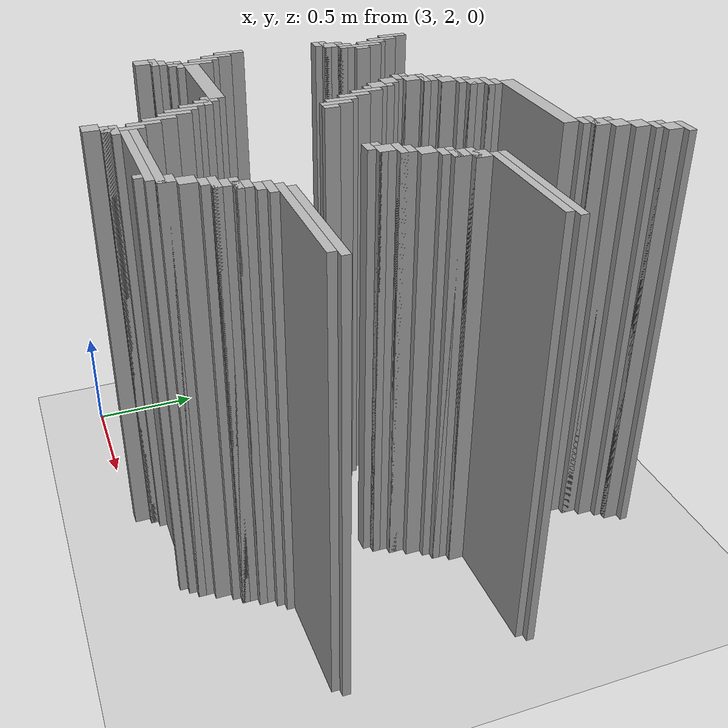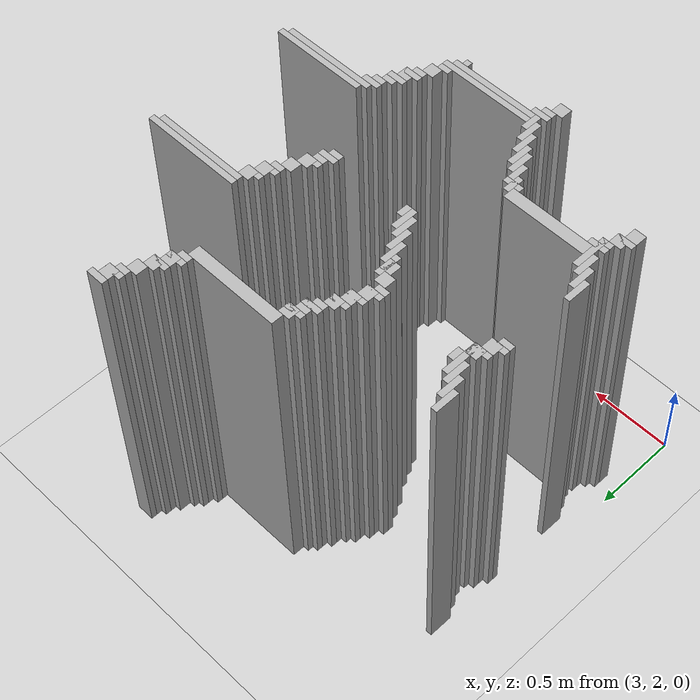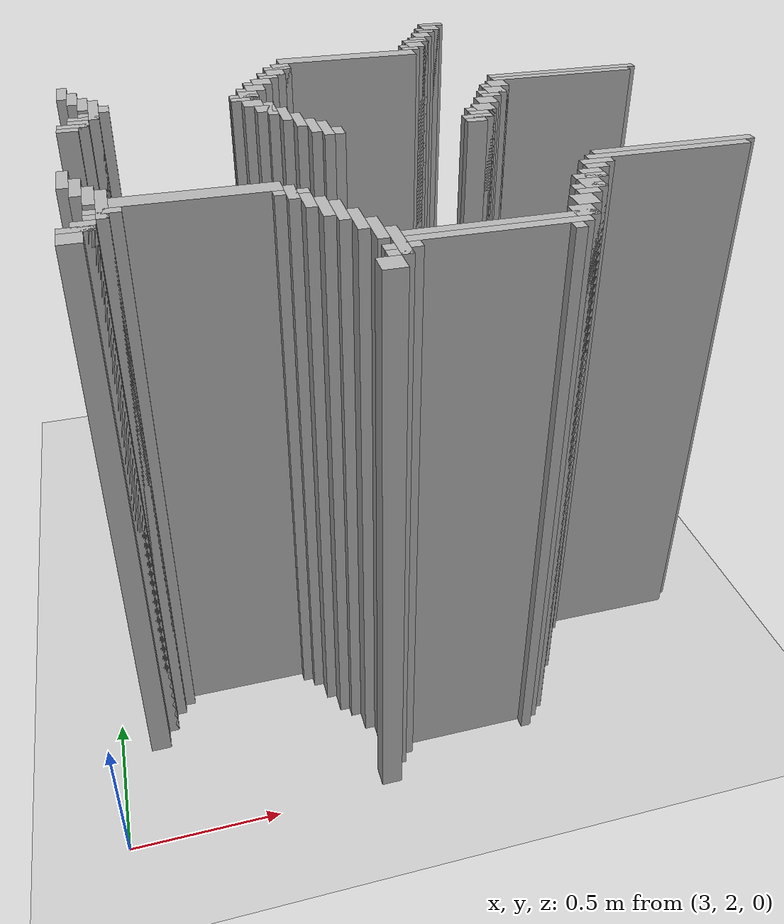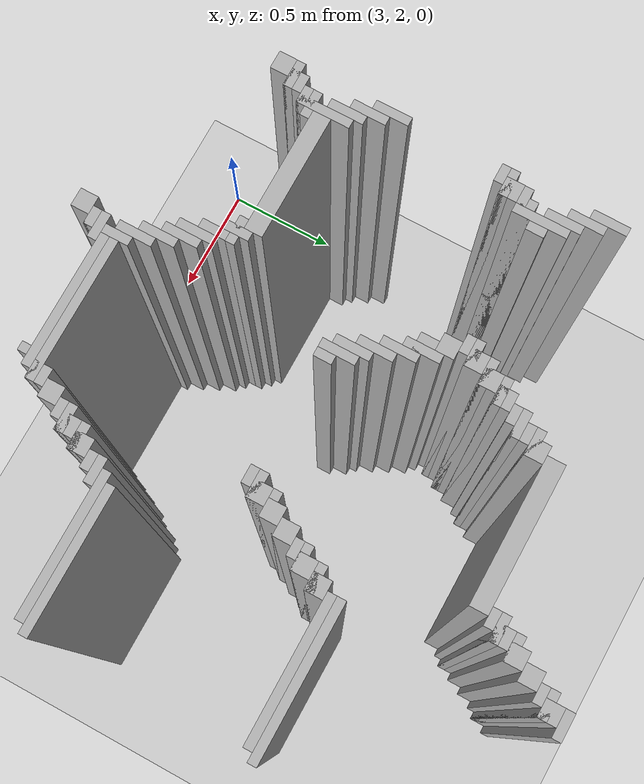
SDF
<sdf version="1.6">
 <world name="slam_world">
  <model name="ground_plane">
   <static>true</static>
   <link name="link">
    <collision name="collision">
     <geometry><plane><normal>0 0 1</normal><size>100 100</size></plane></geometry>
    </collision>
    <visual name="visual">
     <geometry><plane><normal>0 0 1</normal><size>100 100</size></plane></geometry>
     <material>
      <ambient>0.8 0.8 0.8 1</ambient>
      <diffuse>0.8 0.8 0.8 1</diffuse>
      <specular>0.8 0.8 0.8 1</specular>
     </material>
    </visual>
   </link>
  </model>
  <model name="wall_4302">
   <static>true</static>
   <pose>4.6809744779582365 4.263341067285383 1.0 0 0 0</pose>
   <link name="link">
    <collision name="collision">
     <geometry><box><size>0.10440835266821345 0.03480278422273782 2.0</size></box></geometry>
    </collision>
    <visual name="visual">
     <geometry><box><size>0.10440835266821345 0.03480278422273782 2.0</size></box></geometry>
     <material><ambient>0.5 0.5 0.5 1</ambient><diffuse>0.7 0.7 0.7 1</diffuse></material>
    </visual>
   </link>
  </model>
  <model name="wall_4316">
   <static>true</static>
   <pose>4.663573085846868 4.211136890951276 1.0 0 0 0</pose>
   <link name="link">
    <collision name="collision">
     <geometry><box><size>0.06960556844547564 0.06960556844547564 2.0</size></box></geometry>
    </collision>
    <visual name="visual">
     <geometry><box><size>0.06960556844547564 0.06960556844547564 2.0</size></box></geometry>
     <material><ambient>0.5 0.5 0.5 1</ambient><diffuse>0.7 0.7 0.7 1</diffuse></material>
    </visual>
   </link>
  </model>
  <model name="wall_4331">
   <static>true</static>
   <pose>4.646171693735498 4.193735498839907 1.0 0 0 0</pose>
   <link name="link">
    <collision name="collision">
     <geometry><box><size>0.10440835266821345 0.03480278422273782 2.0</size></box></geometry>
    </collision>
    <visual name="visual">
     <geometry><box><size>0.10440835266821345 0.03480278422273782 2.0</size></box></geometry>
     <material><ambient>0.5 0.5 0.5 1</ambient><diffuse>0.7 0.7 0.7 1</diffuse></material>
    </visual>
   </link>
  </model>
  <model name="wall_4344">
   <static>true</static>
   <pose>4.6287703016241295 4.158932714617169 1.0 0 0 0</pose>
   <link name="link">
    <collision name="collision">
     <geometry><box><size>0.06960556844547564 0.03480278422273782 2.0</size></box></geometry>
    </collision>
    <visual name="visual">
     <geometry><box><size>0.06960556844547564 0.03480278422273782 2.0</size></box></geometry>
     <material><ambient>0.5 0.5 0.5 1</ambient><diffuse>0.7 0.7 0.7 1</diffuse></material>
    </visual>
   </link>
  </model>
  <model name="wall_4355">
   <static>true</static>
   <pose>4.593967517401392 4.106728538283062 1.0 0 0 0</pose>
   <link name="link">
    <collision name="collision">
     <geometry><box><size>0.06960556844547564 0.06960556844547564 2.0</size></box></geometry>
    </collision>
    <visual name="visual">
     <geometry><box><size>0.06960556844547564 0.06960556844547564 2.0</size></box></geometry>
     <material><ambient>0.5 0.5 0.5 1</ambient><diffuse>0.7 0.7 0.7 1</diffuse></material>
    </visual>
   </link>
  </model>
  <model name="wall_4370">
   <static>true</static>
   <pose>4.559164733178654 4.037122969837587 1.0 0 0 0</pose>
   <link name="link">
    <collision name="collision">
     <geometry><box><size>0.06960556844547564 0.06960556844547564 2.0</size></box></geometry>
    </collision>
    <visual name="visual">
     <geometry><box><size>0.06960556844547564 0.06960556844547564 2.0</size></box></geometry>
     <material><ambient>0.5 0.5 0.5 1</ambient><diffuse>0.7 0.7 0.7 1</diffuse></material>
    </visual>
   </link>
  </model>
  <model name="wall_4385">
   <static>true</static>
   <pose>4.541763341067285 4.019721577726218 1.0 0 0 0</pose>
   <link name="link">
    <collision name="collision">
     <geometry><box><size>0.10440835266821345 0.03480278422273782 2.0</size></box></geometry>
    </collision>
    <visual name="visual">
     <geometry><box><size>0.10440835266821345 0.03480278422273782 2.0</size></box></geometry>
     <material><ambient>0.5 0.5 0.5 1</ambient><diffuse>0.7 0.7 0.7 1</diffuse></material>
    </visual>
   </link>
  </model>
  <model name="wall_4398">
   <static>true</static>
   <pose>4.524361948955916 3.967517401392111 1.0 0 0 0</pose>
   <link name="link">
    <collision name="collision">
     <geometry><box><size>0.06960556844547564 0.06960556844547564 2.0</size></box></geometry>
    </collision>
    <visual name="visual">
     <geometry><box><size>0.06960556844547564 0.06960556844547564 2.0</size></box></geometry>
     <material><ambient>0.5 0.5 0.5 1</ambient><diffuse>0.7 0.7 0.7 1</diffuse></material>
    </visual>
   </link>
  </model>
  <model name="wall_4408">
   <static>true</static>
   <pose>4.506960556844548 3.9501160092807424 1.0 0 0 0</pose>
   <link name="link">
    <collision name="collision">
     <geometry><box><size>0.10440835266821345 0.03480278422273782 2.0</size></box></geometry>
    </collision>
    <visual name="visual">
     <geometry><box><size>0.10440835266821345 0.03480278422273782 2.0</size></box></geometry>
     <material><ambient>0.5 0.5 0.5 1</ambient><diffuse>0.7 0.7 0.7 1</diffuse></material>
    </visual>
   </link>
  </model>
  <model name="wall_4421">
   <static>true</static>
   <pose>4.489559164733178 3.9153132250580045 1.0 0 0 0</pose>
   <link name="link">
    <collision name="collision">
     <geometry><box><size>0.06960556844547564 0.03480278422273782 2.0</size></box></geometry>
    </collision>
    <visual name="visual">
     <geometry><box><size>0.06960556844547564 0.03480278422273782 2.0</size></box></geometry>
     <material><ambient>0.5 0.5 0.5 1</ambient><diffuse>0.7 0.7 0.7 1</diffuse></material>
    </visual>
   </link>
  </model>
  <model name="wall_4432">
   <static>true</static>
   <pose>4.211136890951276 3.863109048723898 1.0 0 0 0</pose>
   <link name="link">
    <collision name="collision">
     <geometry><box><size>0.5568445475638051 0.06960556844547564 2.0</size></box></geometry>
    </collision>
    <visual name="visual">
     <geometry><box><size>0.5568445475638051 0.06960556844547564 2.0</size></box></geometry>
     <material><ambient>0.5 0.5 0.5 1</ambient><diffuse>0.7 0.7 0.7 1</diffuse></material>
    </visual>
   </link>
  </model>
  <model name="wall_4448">
   <static>true</static>
   <pose>3.932714617169373 3.793503480278422 1.0 0 0 0</pose>
   <link name="link">
    <collision name="collision">
     <geometry><box><size>0.06960556844547564 0.06960556844547564 2.0</size></box></geometry>
    </collision>
    <visual name="visual">
     <geometry><box><size>0.06960556844547564 0.06960556844547564 2.0</size></box></geometry>
     <material><ambient>0.5 0.5 0.5 1</ambient><diffuse>0.7 0.7 0.7 1</diffuse></material>
    </visual>
   </link>
  </model>
  <model name="wall_4465">
   <static>true</static>
   <pose>3.9153132250580045 3.776102088167053 1.0 0 0 0</pose>
   <link name="link">
    <collision name="collision">
     <geometry><box><size>0.10440835266821345 0.03480278422273782 2.0</size></box></geometry>
    </collision>
    <visual name="visual">
     <geometry><box><size>0.10440835266821345 0.03480278422273782 2.0</size></box></geometry>
     <material><ambient>0.5 0.5 0.5 1</ambient><diffuse>0.7 0.7 0.7 1</diffuse></material>
    </visual>
   </link>
  </model>
  <model name="wall_4482">
   <static>true</static>
   <pose>3.897911832946636 3.7238979118329465 1.0 0 0 0</pose>
   <link name="link">
    <collision name="collision">
     <geometry><box><size>0.06960556844547564 0.06960556844547564 2.0</size></box></geometry>
    </collision>
    <visual name="visual">
     <geometry><box><size>0.06960556844547564 0.06960556844547564 2.0</size></box></geometry>
     <material><ambient>0.5 0.5 0.5 1</ambient><diffuse>0.7 0.7 0.7 1</diffuse></material>
    </visual>
   </link>
  </model>
  <model name="wall_4498">
   <static>true</static>
   <pose>3.1148491879350346 3.6542923433874708 1.0 0 0 0</pose>
   <link name="link">
    <collision name="collision">
     <geometry><box><size>0.03480278422273782 0.13921113689095127 2.0</size></box></geometry>
    </collision>
    <visual name="visual">
     <geometry><box><size>0.03480278422273782 0.13921113689095127 2.0</size></box></geometry>
     <material><ambient>0.5 0.5 0.5 1</ambient><diffuse>0.7 0.7 0.7 1</diffuse></material>
    </visual>
   </link>
  </model>
  <model name="wall_4499">
   <static>true</static>
   <pose>3.8805104408352666 3.706496519721578 1.0 0 0 0</pose>
   <link name="link">
    <collision name="collision">
     <geometry><box><size>0.10440835266821345 0.03480278422273782 2.0</size></box></geometry>
    </collision>
    <visual name="visual">
     <geometry><box><size>0.10440835266821345 0.03480278422273782 2.0</size></box></geometry>
     <material><ambient>0.5 0.5 0.5 1</ambient><diffuse>0.7 0.7 0.7 1</diffuse></material>
    </visual>
   </link>
  </model>
  <model name="wall_4513">
   <static>true</static>
   <pose>3.863109048723898 3.67169373549884 1.0 0 0 0</pose>
   <link name="link">
    <collision name="collision">
     <geometry><box><size>0.06960556844547564 0.03480278422273782 2.0</size></box></geometry>
    </collision>
    <visual name="visual">
     <geometry><box><size>0.06960556844547564 0.03480278422273782 2.0</size></box></geometry>
     <material><ambient>0.5 0.5 0.5 1</ambient><diffuse>0.7 0.7 0.7 1</diffuse></material>
    </visual>
   </link>
  </model>
  <model name="wall_4522">
   <static>true</static>
   <pose>3.1496519721577725 3.584686774941995 1.0 0 0 0</pose>
   <link name="link">
    <collision name="collision">
     <geometry><box><size>0.03480278422273782 0.13921113689095127 2.0</size></box></geometry>
    </collision>
    <visual name="visual">
     <geometry><box><size>0.03480278422273782 0.13921113689095127 2.0</size></box></geometry>
     <material><ambient>0.5 0.5 0.5 1</ambient><diffuse>0.7 0.7 0.7 1</diffuse></material>
    </visual>
   </link>
  </model>
  <model name="wall_4523">
   <static>true</static>
   <pose>3.82830626450116 3.619489559164733 1.0 0 0 0</pose>
   <link name="link">
    <collision name="collision">
     <geometry><box><size>0.06960556844547564 0.06960556844547564 2.0</size></box></geometry>
    </collision>
    <visual name="visual">
     <geometry><box><size>0.06960556844547564 0.06960556844547564 2.0</size></box></geometry>
     <material><ambient>0.5 0.5 0.5 1</ambient><diffuse>0.7 0.7 0.7 1</diffuse></material>
    </visual>
   </link>
  </model>
  <model name="wall_4537">
   <static>true</static>
   <pose>3.810904872389791 3.602088167053364 1.0 0 0 0</pose>
   <link name="link">
    <collision name="collision">
     <geometry><box><size>0.10440835266821345 0.03480278422273782 2.0</size></box></geometry>
    </collision>
    <visual name="visual">
     <geometry><box><size>0.10440835266821345 0.03480278422273782 2.0</size></box></geometry>
     <material><ambient>0.5 0.5 0.5 1</ambient><diffuse>0.7 0.7 0.7 1</diffuse></material>
    </visual>
   </link>
  </model>
  <model name="wall_4546">
   <static>true</static>
   <pose>3.1844547563805103 3.51508120649652 1.0 0 0 0</pose>
   <link name="link">
    <collision name="collision">
     <geometry><box><size>0.03480278422273782 0.13921113689095127 2.0</size></box></geometry>
    </collision>
    <visual name="visual">
     <geometry><box><size>0.03480278422273782 0.13921113689095127 2.0</size></box></geometry>
     <material><ambient>0.5 0.5 0.5 1</ambient><diffuse>0.7 0.7 0.7 1</diffuse></material>
    </visual>
   </link>
  </model>
  <model name="wall_4547">
   <static>true</static>
   <pose>3.793503480278422 3.549883990719257 1.0 0 0 0</pose>
   <link name="link">
    <collision name="collision">
     <geometry><box><size>0.06960556844547564 0.06960556844547564 2.0</size></box></geometry>
    </collision>
    <visual name="visual">
     <geometry><box><size>0.06960556844547564 0.06960556844547564 2.0</size></box></geometry>
     <material><ambient>0.5 0.5 0.5 1</ambient><diffuse>0.7 0.7 0.7 1</diffuse></material>
    </visual>
   </link>
  </model>
  <model name="wall_4563">
   <static>true</static>
   <pose>3.219257540603248 3.445475638051044 1.0 0 0 0</pose>
   <link name="link">
    <collision name="collision">
     <geometry><box><size>0.03480278422273782 0.2088167053364269 2.0</size></box></geometry>
    </collision>
    <visual name="visual">
     <geometry><box><size>0.03480278422273782 0.2088167053364269 2.0</size></box></geometry>
     <material><ambient>0.5 0.5 0.5 1</ambient><diffuse>0.7 0.7 0.7 1</diffuse></material>
    </visual>
   </link>
  </model>
  <model name="wall_4564">
   <static>true</static>
   <pose>3.776102088167053 3.5324825986078885 1.0 0 0 0</pose>
   <link name="link">
    <collision name="collision">
     <geometry><box><size>0.10440835266821345 0.03480278422273782 2.0</size></box></geometry>
    </collision>
    <visual name="visual">
     <geometry><box><size>0.10440835266821345 0.03480278422273782 2.0</size></box></geometry>
     <material><ambient>0.5 0.5 0.5 1</ambient><diffuse>0.7 0.7 0.7 1</diffuse></material>
    </visual>
   </link>
  </model>
  <model name="wall_4578">
   <static>true</static>
   <pose>3.7587006960556844 3.480278422273782 1.0 0 0 0</pose>
   <link name="link">
    <collision name="collision">
     <geometry><box><size>0.06960556844547564 0.06960556844547564 2.0</size></box></geometry>
    </collision>
    <visual name="visual">
     <geometry><box><size>0.06960556844547564 0.06960556844547564 2.0</size></box></geometry>
     <material><ambient>0.5 0.5 0.5 1</ambient><diffuse>0.7 0.7 0.7 1</diffuse></material>
    </visual>
   </link>
  </model>
  <model name="wall_4587">
   <static>true</static>
   <pose>3.254060324825986 3.445475638051044 1.0 0 0 0</pose>
   <link name="link">
    <collision name="collision">
     <geometry><box><size>0.03480278422273782 0.06960556844547564 2.0</size></box></geometry>
    </collision>
    <visual name="visual">
     <geometry><box><size>0.03480278422273782 0.06960556844547564 2.0</size></box></geometry>
     <material><ambient>0.5 0.5 0.5 1</ambient><diffuse>0.7 0.7 0.7 1</diffuse></material>
    </visual>
   </link>
  </model>
  <model name="wall_4588">
   <static>true</static>
   <pose>3.741299303944315 3.4628770301624128 1.0 0 0 0</pose>
   <link name="link">
    <collision name="collision">
     <geometry><box><size>0.10440835266821345 0.03480278422273782 2.0</size></box></geometry>
    </collision>
    <visual name="visual">
     <geometry><box><size>0.10440835266821345 0.03480278422273782 2.0</size></box></geometry>
     <material><ambient>0.5 0.5 0.5 1</ambient><diffuse>0.7 0.7 0.7 1</diffuse></material>
    </visual>
   </link>
  </model>
  <model name="wall_4589">
   <static>true</static>
   <pose>4.959396751740139 3.4628770301624128 1.0 0 0 0</pose>
   <link name="link">
    <collision name="collision">
     <geometry><box><size>0.5916473317865429 0.03480278422273782 2.0</size></box></geometry>
    </collision>
    <visual name="visual">
     <geometry><box><size>0.5916473317865429 0.03480278422273782 2.0</size></box></geometry>
     <material><ambient>0.5 0.5 0.5 1</ambient><diffuse>0.7 0.7 0.7 1</diffuse></material>
    </visual>
   </link>
  </model>
  <model name="wall_4601">
   <static>true</static>
   <pose>3.7238979118329465 3.428074245939675 1.0 0 0 0</pose>
   <link name="link">
    <collision name="collision">
     <geometry><box><size>0.06960556844547564 0.03480278422273782 2.0</size></box></geometry>
    </collision>
    <visual name="visual">
     <geometry><box><size>0.06960556844547564 0.03480278422273782 2.0</size></box></geometry>
     <material><ambient>0.5 0.5 0.5 1</ambient><diffuse>0.7 0.7 0.7 1</diffuse></material>
    </visual>
   </link>
  </model>
  <model name="wall_4602">
   <static>true</static>
   <pose>4.94199535962877 3.428074245939675 1.0 0 0 0</pose>
   <link name="link">
    <collision name="collision">
     <geometry><box><size>0.5568445475638051 0.03480278422273782 2.0</size></box></geometry>
    </collision>
    <visual name="visual">
     <geometry><box><size>0.5568445475638051 0.03480278422273782 2.0</size></box></geometry>
     <material><ambient>0.5 0.5 0.5 1</ambient><diffuse>0.7 0.7 0.7 1</diffuse></material>
    </visual>
   </link>
  </model>
  <model name="wall_4609">
   <static>true</static>
   <pose>3.201856148491879 3.3758700696055683 1.0 0 0 0</pose>
   <link name="link">
    <collision name="collision">
     <geometry><box><size>0.06960556844547564 0.06960556844547564 2.0</size></box></geometry>
    </collision>
    <visual name="visual">
     <geometry><box><size>0.06960556844547564 0.06960556844547564 2.0</size></box></geometry>
     <material><ambient>0.5 0.5 0.5 1</ambient><diffuse>0.7 0.7 0.7 1</diffuse></material>
    </visual>
   </link>
  </model>
  <model name="wall_4610">
   <static>true</static>
   <pose>3.7587006960556844 3.3758700696055683 1.0 0 0 0</pose>
   <link name="link">
    <collision name="collision">
     <geometry><box><size>0.06960556844547564 0.06960556844547564 2.0</size></box></geometry>
    </collision>
    <visual name="visual">
     <geometry><box><size>0.06960556844547564 0.06960556844547564 2.0</size></box></geometry>
     <material><ambient>0.5 0.5 0.5 1</ambient><diffuse>0.7 0.7 0.7 1</diffuse></material>
    </visual>
   </link>
  </model>
  <model name="wall_4611">
   <static>true</static>
   <pose>4.663573085846868 3.3758700696055683 1.0 0 0 0</pose>
   <link name="link">
    <collision name="collision">
     <geometry><box><size>0.06960556844547564 0.06960556844547564 2.0</size></box></geometry>
    </collision>
    <visual name="visual">
     <geometry><box><size>0.06960556844547564 0.06960556844547564 2.0</size></box></geometry>
     <material><ambient>0.5 0.5 0.5 1</ambient><diffuse>0.7 0.7 0.7 1</diffuse></material>
    </visual>
   </link>
  </model>
  <model name="wall_4622">
   <static>true</static>
   <pose>3.1844547563805103 3.358468677494199 1.0 0 0 0</pose>
   <link name="link">
    <collision name="collision">
     <geometry><box><size>0.10440835266821345 0.03480278422273782 2.0</size></box></geometry>
    </collision>
    <visual name="visual">
     <geometry><box><size>0.10440835266821345 0.03480278422273782 2.0</size></box></geometry>
     <material><ambient>0.5 0.5 0.5 1</ambient><diffuse>0.7 0.7 0.7 1</diffuse></material>
    </visual>
   </link>
  </model>
  <model name="wall_4623">
   <static>true</static>
   <pose>3.810904872389791 3.3062645011600926 1.0 0 0 0</pose>
   <link name="link">
    <collision name="collision">
     <geometry><box><size>0.03480278422273782 0.13921113689095127 2.0</size></box></geometry>
    </collision>
    <visual name="visual">
     <geometry><box><size>0.03480278422273782 0.13921113689095127 2.0</size></box></geometry>
     <material><ambient>0.5 0.5 0.5 1</ambient><diffuse>0.7 0.7 0.7 1</diffuse></material>
    </visual>
   </link>
  </model>
  <model name="wall_4624">
   <static>true</static>
   <pose>4.646171693735498 3.358468677494199 1.0 0 0 0</pose>
   <link name="link">
    <collision name="collision">
     <geometry><box><size>0.10440835266821345 0.03480278422273782 2.0</size></box></geometry>
    </collision>
    <visual name="visual">
     <geometry><box><size>0.10440835266821345 0.03480278422273782 2.0</size></box></geometry>
     <material><ambient>0.5 0.5 0.5 1</ambient><diffuse>0.7 0.7 0.7 1</diffuse></material>
    </visual>
   </link>
  </model>
  <model name="wall_4635">
   <static>true</static>
   <pose>3.167053364269141 3.3062645011600926 1.0 0 0 0</pose>
   <link name="link">
    <collision name="collision">
     <geometry><box><size>0.06960556844547564 0.06960556844547564 2.0</size></box></geometry>
    </collision>
    <visual name="visual">
     <geometry><box><size>0.06960556844547564 0.06960556844547564 2.0</size></box></geometry>
     <material><ambient>0.5 0.5 0.5 1</ambient><diffuse>0.7 0.7 0.7 1</diffuse></material>
    </visual>
   </link>
  </model>
  <model name="wall_4636">
   <static>true</static>
   <pose>3.793503480278422 3.3062645011600926 1.0 0 0 0</pose>
   <link name="link">
    <collision name="collision">
     <geometry><box><size>0.06960556844547564 0.06960556844547564 2.0</size></box></geometry>
    </collision>
    <visual name="visual">
     <geometry><box><size>0.06960556844547564 0.06960556844547564 2.0</size></box></geometry>
     <material><ambient>0.5 0.5 0.5 1</ambient><diffuse>0.7 0.7 0.7 1</diffuse></material>
    </visual>
   </link>
  </model>
  <model name="wall_4637">
   <static>true</static>
   <pose>4.6287703016241295 3.3062645011600926 1.0 0 0 0</pose>
   <link name="link">
    <collision name="collision">
     <geometry><box><size>0.06960556844547564 0.06960556844547564 2.0</size></box></geometry>
    </collision>
    <visual name="visual">
     <geometry><box><size>0.06960556844547564 0.06960556844547564 2.0</size></box></geometry>
     <material><ambient>0.5 0.5 0.5 1</ambient><diffuse>0.7 0.7 0.7 1</diffuse></material>
    </visual>
   </link>
  </model>
  <model name="wall_4648">
   <static>true</static>
   <pose>3.1496519721577725 3.288863109048724 1.0 0 0 0</pose>
   <link name="link">
    <collision name="collision">
     <geometry><box><size>0.10440835266821345 0.03480278422273782 2.0</size></box></geometry>
    </collision>
    <visual name="visual">
     <geometry><box><size>0.10440835266821345 0.03480278422273782 2.0</size></box></geometry>
     <material><ambient>0.5 0.5 0.5 1</ambient><diffuse>0.7 0.7 0.7 1</diffuse></material>
    </visual>
   </link>
  </model>
  <model name="wall_4649">
   <static>true</static>
   <pose>3.845707656612529 3.236658932714617 1.0 0 0 0</pose>
   <link name="link">
    <collision name="collision">
     <geometry><box><size>0.03480278422273782 0.13921113689095127 2.0</size></box></geometry>
    </collision>
    <visual name="visual">
     <geometry><box><size>0.03480278422273782 0.13921113689095127 2.0</size></box></geometry>
     <material><ambient>0.5 0.5 0.5 1</ambient><diffuse>0.7 0.7 0.7 1</diffuse></material>
    </visual>
   </link>
  </model>
  <model name="wall_4650">
   <static>true</static>
   <pose>4.611368909512761 3.288863109048724 1.0 0 0 0</pose>
   <link name="link">
    <collision name="collision">
     <geometry><box><size>0.10440835266821345 0.03480278422273782 2.0</size></box></geometry>
    </collision>
    <visual name="visual">
     <geometry><box><size>0.10440835266821345 0.03480278422273782 2.0</size></box></geometry>
     <material><ambient>0.5 0.5 0.5 1</ambient><diffuse>0.7 0.7 0.7 1</diffuse></material>
    </visual>
   </link>
  </model>
  <model name="wall_4659">
   <static>true</static>
   <pose>3.1322505800464038 3.254060324825986 1.0 0 0 0</pose>
   <link name="link">
    <collision name="collision">
     <geometry><box><size>0.06960556844547564 0.03480278422273782 2.0</size></box></geometry>
    </collision>
    <visual name="visual">
     <geometry><box><size>0.06960556844547564 0.03480278422273782 2.0</size></box></geometry>
     <material><ambient>0.5 0.5 0.5 1</ambient><diffuse>0.7 0.7 0.7 1</diffuse></material>
    </visual>
   </link>
  </model>
  <model name="wall_4660">
   <static>true</static>
   <pose>4.593967517401392 3.254060324825986 1.0 0 0 0</pose>
   <link name="link">
    <collision name="collision">
     <geometry><box><size>0.06960556844547564 0.03480278422273782 2.0</size></box></geometry>
    </collision>
    <visual name="visual">
     <geometry><box><size>0.06960556844547564 0.03480278422273782 2.0</size></box></geometry>
     <material><ambient>0.5 0.5 0.5 1</ambient><diffuse>0.7 0.7 0.7 1</diffuse></material>
    </visual>
   </link>
  </model>
  <model name="wall_4668">
   <static>true</static>
   <pose>3.8805104408352666 3.167053364269141 1.0 0 0 0</pose>
   <link name="link">
    <collision name="collision">
     <geometry><box><size>0.03480278422273782 0.13921113689095127 2.0</size></box></geometry>
    </collision>
    <visual name="visual">
     <geometry><box><size>0.03480278422273782 0.13921113689095127 2.0</size></box></geometry>
     <material><ambient>0.5 0.5 0.5 1</ambient><diffuse>0.7 0.7 0.7 1</diffuse></material>
    </visual>
   </link>
  </model>
  <model name="wall_4669">
   <static>true</static>
   <pose>4.559164733178654 3.201856148491879 1.0 0 0 0</pose>
   <link name="link">
    <collision name="collision">
     <geometry><box><size>0.06960556844547564 0.06960556844547564 2.0</size></box></geometry>
    </collision>
    <visual name="visual">
     <geometry><box><size>0.06960556844547564 0.06960556844547564 2.0</size></box></geometry>
     <material><ambient>0.5 0.5 0.5 1</ambient><diffuse>0.7 0.7 0.7 1</diffuse></material>
    </visual>
   </link>
  </model>
  <model name="wall_4681">
   <static>true</static>
   <pose>3.9153132250580045 3.097447795823666 1.0 0 0 0</pose>
   <link name="link">
    <collision name="collision">
     <geometry><box><size>0.03480278422273782 0.13921113689095127 2.0</size></box></geometry>
    </collision>
    <visual name="visual">
     <geometry><box><size>0.03480278422273782 0.13921113689095127 2.0</size></box></geometry>
     <material><ambient>0.5 0.5 0.5 1</ambient><diffuse>0.7 0.7 0.7 1</diffuse></material>
    </visual>
   </link>
  </model>
  <model name="wall_4682">
   <static>true</static>
   <pose>4.524361948955916 3.1322505800464038 1.0 0 0 0</pose>
   <link name="link">
    <collision name="collision">
     <geometry><box><size>0.06960556844547564 0.06960556844547564 2.0</size></box></geometry>
    </collision>
    <visual name="visual">
     <geometry><box><size>0.06960556844547564 0.06960556844547564 2.0</size></box></geometry>
     <material><ambient>0.5 0.5 0.5 1</ambient><diffuse>0.7 0.7 0.7 1</diffuse></material>
    </visual>
   </link>
  </model>
  <model name="wall_4694">
   <static>true</static>
   <pose>3.9501160092807424 3.062645011600928 1.0 0 0 0</pose>
   <link name="link">
    <collision name="collision">
     <geometry><box><size>0.03480278422273782 0.13921113689095127 2.0</size></box></geometry>
    </collision>
    <visual name="visual">
     <geometry><box><size>0.03480278422273782 0.13921113689095127 2.0</size></box></geometry>
     <material><ambient>0.5 0.5 0.5 1</ambient><diffuse>0.7 0.7 0.7 1</diffuse></material>
    </visual>
   </link>
  </model>
  <model name="wall_4695">
   <static>true</static>
   <pose>4.506960556844548 3.1148491879350346 1.0 0 0 0</pose>
   <link name="link">
    <collision name="collision">
     <geometry><box><size>0.10440835266821345 0.03480278422273782 2.0</size></box></geometry>
    </collision>
    <visual name="visual">
     <geometry><box><size>0.10440835266821345 0.03480278422273782 2.0</size></box></geometry>
     <material><ambient>0.5 0.5 0.5 1</ambient><diffuse>0.7 0.7 0.7 1</diffuse></material>
    </visual>
   </link>
  </model>
  <model name="wall_4705">
   <static>true</static>
   <pose>4.489559164733178 3.062645011600928 1.0 0 0 0</pose>
   <link name="link">
    <collision name="collision">
     <geometry><box><size>0.06960556844547564 0.06960556844547564 2.0</size></box></geometry>
    </collision>
    <visual name="visual">
     <geometry><box><size>0.06960556844547564 0.06960556844547564 2.0</size></box></geometry>
     <material><ambient>0.5 0.5 0.5 1</ambient><diffuse>0.7 0.7 0.7 1</diffuse></material>
    </visual>
   </link>
  </model>
  <model name="wall_4714">
   <static>true</static>
   <pose>3.98491879350348 3.02784222737819 1.0 0 0 0</pose>
   <link name="link">
    <collision name="collision">
     <geometry><box><size>0.03480278422273782 0.06960556844547564 2.0</size></box></geometry>
    </collision>
    <visual name="visual">
     <geometry><box><size>0.03480278422273782 0.06960556844547564 2.0</size></box></geometry>
     <material><ambient>0.5 0.5 0.5 1</ambient><diffuse>0.7 0.7 0.7 1</diffuse></material>
    </visual>
   </link>
  </model>
  <model name="wall_4715">
   <static>true</static>
   <pose>4.472157772621809 3.045243619489559 1.0 0 0 0</pose>
   <link name="link">
    <collision name="collision">
     <geometry><box><size>0.10440835266821345 0.03480278422273782 2.0</size></box></geometry>
    </collision>
    <visual name="visual">
     <geometry><box><size>0.10440835266821345 0.03480278422273782 2.0</size></box></geometry>
     <material><ambient>0.5 0.5 0.5 1</ambient><diffuse>0.7 0.7 0.7 1</diffuse></material>
    </visual>
   </link>
  </model>
  <model name="wall_4727">
   <static>true</static>
   <pose>4.454756380510441 3.010440835266821 1.0 0 0 0</pose>
   <link name="link">
    <collision name="collision">
     <geometry><box><size>0.06960556844547564 0.03480278422273782 2.0</size></box></geometry>
    </collision>
    <visual name="visual">
     <geometry><box><size>0.06960556844547564 0.03480278422273782 2.0</size></box></geometry>
     <material><ambient>0.5 0.5 0.5 1</ambient><diffuse>0.7 0.7 0.7 1</diffuse></material>
    </visual>
   </link>
  </model>
  <model name="wall_4770">
   <static>true</static>
   <pose>3.1148491879350346 2.819025522041763 1.0 0 0 0</pose>
   <link name="link">
    <collision name="collision">
     <geometry><box><size>0.03480278422273782 0.13921113689095127 2.0</size></box></geometry>
    </collision>
    <visual name="visual">
     <geometry><box><size>0.03480278422273782 0.13921113689095127 2.0</size></box></geometry>
     <material><ambient>0.5 0.5 0.5 1</ambient><diffuse>0.7 0.7 0.7 1</diffuse></material>
    </visual>
   </link>
  </model>
  <model name="wall_4802">
   <static>true</static>
   <pose>3.1496519721577725 2.7494199535962878 1.0 0 0 0</pose>
   <link name="link">
    <collision name="collision">
     <geometry><box><size>0.03480278422273782 0.13921113689095127 2.0</size></box></geometry>
    </collision>
    <visual name="visual">
     <geometry><box><size>0.03480278422273782 0.13921113689095127 2.0</size></box></geometry>
     <material><ambient>0.5 0.5 0.5 1</ambient><diffuse>0.7 0.7 0.7 1</diffuse></material>
    </visual>
   </link>
  </model>
  <model name="wall_4826">
   <static>true</static>
   <pose>3.1844547563805103 2.679814385150812 1.0 0 0 0</pose>
   <link name="link">
    <collision name="collision">
     <geometry><box><size>0.03480278422273782 0.13921113689095127 2.0</size></box></geometry>
    </collision>
    <visual name="visual">
     <geometry><box><size>0.03480278422273782 0.13921113689095127 2.0</size></box></geometry>
     <material><ambient>0.5 0.5 0.5 1</ambient><diffuse>0.7 0.7 0.7 1</diffuse></material>
    </visual>
   </link>
  </model>
  <model name="wall_4842">
   <static>true</static>
   <pose>3.219257540603248 2.6102088167053363 1.0 0 0 0</pose>
   <link name="link">
    <collision name="collision">
     <geometry><box><size>0.03480278422273782 0.2088167053364269 2.0</size></box></geometry>
    </collision>
    <visual name="visual">
     <geometry><box><size>0.03480278422273782 0.2088167053364269 2.0</size></box></geometry>
     <material><ambient>0.5 0.5 0.5 1</ambient><diffuse>0.7 0.7 0.7 1</diffuse></material>
    </visual>
   </link>
  </model>
  <model name="wall_4866">
   <static>true</static>
   <pose>3.480278422273782 2.6102088167053363 1.0 0 0 0</pose>
   <link name="link">
    <collision name="collision">
     <geometry><box><size>0.4872389791183295 0.06960556844547564 2.0</size></box></geometry>
    </collision>
    <visual name="visual">
     <geometry><box><size>0.4872389791183295 0.06960556844547564 2.0</size></box></geometry>
     <material><ambient>0.5 0.5 0.5 1</ambient><diffuse>0.7 0.7 0.7 1</diffuse></material>
    </visual>
   </link>
  </model>
  <model name="wall_4867">
   <static>true</static>
   <pose>4.976798143851508 2.627610208816705 1.0 0 0 0</pose>
   <link name="link">
    <collision name="collision">
     <geometry><box><size>0.5568445475638051 0.03480278422273782 2.0</size></box></geometry>
    </collision>
    <visual name="visual">
     <geometry><box><size>0.5568445475638051 0.03480278422273782 2.0</size></box></geometry>
     <material><ambient>0.5 0.5 0.5 1</ambient><diffuse>0.7 0.7 0.7 1</diffuse></material>
    </visual>
   </link>
  </model>
  <model name="wall_4879">
   <static>true</static>
   <pose>3.741299303944315 2.5580046403712298 1.0 0 0 0</pose>
   <link name="link">
    <collision name="collision">
     <geometry><box><size>0.03480278422273782 0.10440835266821345 2.0</size></box></geometry>
    </collision>
    <visual name="visual">
     <geometry><box><size>0.03480278422273782 0.10440835266821345 2.0</size></box></geometry>
     <material><ambient>0.5 0.5 0.5 1</ambient><diffuse>0.7 0.7 0.7 1</diffuse></material>
    </visual>
   </link>
  </model>
  <model name="wall_4880">
   <static>true</static>
   <pose>4.94199535962877 2.5928074245939676 1.0 0 0 0</pose>
   <link name="link">
    <collision name="collision">
     <geometry><box><size>0.5568445475638051 0.03480278422273782 2.0</size></box></geometry>
    </collision>
    <visual name="visual">
     <geometry><box><size>0.5568445475638051 0.03480278422273782 2.0</size></box></geometry>
     <material><ambient>0.5 0.5 0.5 1</ambient><diffuse>0.7 0.7 0.7 1</diffuse></material>
    </visual>
   </link>
  </model>
  <model name="wall_4890">
   <static>true</static>
   <pose>3.219257540603248 2.5580046403712298 1.0 0 0 0</pose>
   <link name="link">
    <collision name="collision">
     <geometry><box><size>0.10440835266821345 0.03480278422273782 2.0</size></box></geometry>
    </collision>
    <visual name="visual">
     <geometry><box><size>0.10440835266821345 0.03480278422273782 2.0</size></box></geometry>
     <material><ambient>0.5 0.5 0.5 1</ambient><diffuse>0.7 0.7 0.7 1</diffuse></material>
    </visual>
   </link>
  </model>
  <model name="wall_4891">
   <static>true</static>
   <pose>3.741299303944315 2.5580046403712298 1.0 0 0 0</pose>
   <link name="link">
    <collision name="collision">
     <geometry><box><size>0.10440835266821345 0.03480278422273782 2.0</size></box></geometry>
    </collision>
    <visual name="visual">
     <geometry><box><size>0.10440835266821345 0.03480278422273782 2.0</size></box></geometry>
     <material><ambient>0.5 0.5 0.5 1</ambient><diffuse>0.7 0.7 0.7 1</diffuse></material>
    </visual>
   </link>
  </model>
  <model name="wall_4892">
   <static>true</static>
   <pose>4.6809744779582365 2.5580046403712298 1.0 0 0 0</pose>
   <link name="link">
    <collision name="collision">
     <geometry><box><size>0.10440835266821345 0.03480278422273782 2.0</size></box></geometry>
    </collision>
    <visual name="visual">
     <geometry><box><size>0.10440835266821345 0.03480278422273782 2.0</size></box></geometry>
     <material><ambient>0.5 0.5 0.5 1</ambient><diffuse>0.7 0.7 0.7 1</diffuse></material>
    </visual>
   </link>
  </model>
  <model name="wall_4901">
   <static>true</static>
   <pose>3.201856148491879 2.523201856148492 1.0 0 0 0</pose>
   <link name="link">
    <collision name="collision">
     <geometry><box><size>0.06960556844547564 0.03480278422273782 2.0</size></box></geometry>
    </collision>
    <visual name="visual">
     <geometry><box><size>0.06960556844547564 0.03480278422273782 2.0</size></box></geometry>
     <material><ambient>0.5 0.5 0.5 1</ambient><diffuse>0.7 0.7 0.7 1</diffuse></material>
    </visual>
   </link>
  </model>
  <model name="wall_4902">
   <static>true</static>
   <pose>3.776102088167053 2.488399071925754 1.0 0 0 0</pose>
   <link name="link">
    <collision name="collision">
     <geometry><box><size>0.03480278422273782 0.10440835266821345 2.0</size></box></geometry>
    </collision>
    <visual name="visual">
     <geometry><box><size>0.03480278422273782 0.10440835266821345 2.0</size></box></geometry>
     <material><ambient>0.5 0.5 0.5 1</ambient><diffuse>0.7 0.7 0.7 1</diffuse></material>
    </visual>
   </link>
  </model>
  <model name="wall_4903">
   <static>true</static>
   <pose>4.663573085846868 2.523201856148492 1.0 0 0 0</pose>
   <link name="link">
    <collision name="collision">
     <geometry><box><size>0.06960556844547564 0.03480278422273782 2.0</size></box></geometry>
    </collision>
    <visual name="visual">
     <geometry><box><size>0.06960556844547564 0.03480278422273782 2.0</size></box></geometry>
     <material><ambient>0.5 0.5 0.5 1</ambient><diffuse>0.7 0.7 0.7 1</diffuse></material>
    </visual>
   </link>
  </model>
  <model name="wall_4910">
   <static>true</static>
   <pose>3.167053364269141 2.470997679814385 1.0 0 0 0</pose>
   <link name="link">
    <collision name="collision">
     <geometry><box><size>0.06960556844547564 0.06960556844547564 2.0</size></box></geometry>
    </collision>
    <visual name="visual">
     <geometry><box><size>0.06960556844547564 0.06960556844547564 2.0</size></box></geometry>
     <material><ambient>0.5 0.5 0.5 1</ambient><diffuse>0.7 0.7 0.7 1</diffuse></material>
    </visual>
   </link>
  </model>
  <model name="wall_4911">
   <static>true</static>
   <pose>3.810904872389791 2.436194895591647 1.0 0 0 0</pose>
   <link name="link">
    <collision name="collision">
     <geometry><box><size>0.03480278422273782 0.13921113689095127 2.0</size></box></geometry>
    </collision>
    <visual name="visual">
     <geometry><box><size>0.03480278422273782 0.13921113689095127 2.0</size></box></geometry>
     <material><ambient>0.5 0.5 0.5 1</ambient><diffuse>0.7 0.7 0.7 1</diffuse></material>
    </visual>
   </link>
  </model>
  <model name="wall_4912">
   <static>true</static>
   <pose>4.6287703016241295 2.470997679814385 1.0 0 0 0</pose>
   <link name="link">
    <collision name="collision">
     <geometry><box><size>0.06960556844547564 0.06960556844547564 2.0</size></box></geometry>
    </collision>
    <visual name="visual">
     <geometry><box><size>0.06960556844547564 0.06960556844547564 2.0</size></box></geometry>
     <material><ambient>0.5 0.5 0.5 1</ambient><diffuse>0.7 0.7 0.7 1</diffuse></material>
    </visual>
   </link>
  </model>
  <model name="wall_4923">
   <static>true</static>
   <pose>3.1496519721577725 2.453596287703016 1.0 0 0 0</pose>
   <link name="link">
    <collision name="collision">
     <geometry><box><size>0.10440835266821345 0.03480278422273782 2.0</size></box></geometry>
    </collision>
    <visual name="visual">
     <geometry><box><size>0.10440835266821345 0.03480278422273782 2.0</size></box></geometry>
     <material><ambient>0.5 0.5 0.5 1</ambient><diffuse>0.7 0.7 0.7 1</diffuse></material>
    </visual>
   </link>
  </model>
  <model name="wall_4924">
   <static>true</static>
   <pose>3.845707656612529 2.4013921113689096 1.0 0 0 0</pose>
   <link name="link">
    <collision name="collision">
     <geometry><box><size>0.03480278422273782 0.13921113689095127 2.0</size></box></geometry>
    </collision>
    <visual name="visual">
     <geometry><box><size>0.03480278422273782 0.13921113689095127 2.0</size></box></geometry>
     <material><ambient>0.5 0.5 0.5 1</ambient><diffuse>0.7 0.7 0.7 1</diffuse></material>
    </visual>
   </link>
  </model>
  <model name="wall_4925">
   <static>true</static>
   <pose>4.611368909512761 2.453596287703016 1.0 0 0 0</pose>
   <link name="link">
    <collision name="collision">
     <geometry><box><size>0.10440835266821345 0.03480278422273782 2.0</size></box></geometry>
    </collision>
    <visual name="visual">
     <geometry><box><size>0.10440835266821345 0.03480278422273782 2.0</size></box></geometry>
     <material><ambient>0.5 0.5 0.5 1</ambient><diffuse>0.7 0.7 0.7 1</diffuse></material>
    </visual>
   </link>
  </model>
  <model name="wall_4936">
   <static>true</static>
   <pose>3.1322505800464038 2.4013921113689096 1.0 0 0 0</pose>
   <link name="link">
    <collision name="collision">
     <geometry><box><size>0.06960556844547564 0.06960556844547564 2.0</size></box></geometry>
    </collision>
    <visual name="visual">
     <geometry><box><size>0.06960556844547564 0.06960556844547564 2.0</size></box></geometry>
     <material><ambient>0.5 0.5 0.5 1</ambient><diffuse>0.7 0.7 0.7 1</diffuse></material>
    </visual>
   </link>
  </model>
  <model name="wall_4937">
   <static>true</static>
   <pose>4.593967517401392 2.4013921113689096 1.0 0 0 0</pose>
   <link name="link">
    <collision name="collision">
     <geometry><box><size>0.06960556844547564 0.06960556844547564 2.0</size></box></geometry>
    </collision>
    <visual name="visual">
     <geometry><box><size>0.06960556844547564 0.06960556844547564 2.0</size></box></geometry>
     <material><ambient>0.5 0.5 0.5 1</ambient><diffuse>0.7 0.7 0.7 1</diffuse></material>
    </visual>
   </link>
  </model>
  <model name="wall_4949">
   <static>true</static>
   <pose>3.8805104408352666 2.331786542923434 1.0 0 0 0</pose>
   <link name="link">
    <collision name="collision">
     <geometry><box><size>0.03480278422273782 0.13921113689095127 2.0</size></box></geometry>
    </collision>
    <visual name="visual">
     <geometry><box><size>0.03480278422273782 0.13921113689095127 2.0</size></box></geometry>
     <material><ambient>0.5 0.5 0.5 1</ambient><diffuse>0.7 0.7 0.7 1</diffuse></material>
    </visual>
   </link>
  </model>
  <model name="wall_4950">
   <static>true</static>
   <pose>4.576566125290023 2.3839907192575405 1.0 0 0 0</pose>
   <link name="link">
    <collision name="collision">
     <geometry><box><size>0.10440835266821345 0.03480278422273782 2.0</size></box></geometry>
    </collision>
    <visual name="visual">
     <geometry><box><size>0.10440835266821345 0.03480278422273782 2.0</size></box></geometry>
     <material><ambient>0.5 0.5 0.5 1</ambient><diffuse>0.7 0.7 0.7 1</diffuse></material>
    </visual>
   </link>
  </model>
  <model name="wall_4961">
   <static>true</static>
   <pose>4.559164733178654 2.3491879350348026 1.0 0 0 0</pose>
   <link name="link">
    <collision name="collision">
     <geometry><box><size>0.06960556844547564 0.03480278422273782 2.0</size></box></geometry>
    </collision>
    <visual name="visual">
     <geometry><box><size>0.06960556844547564 0.03480278422273782 2.0</size></box></geometry>
     <material><ambient>0.5 0.5 0.5 1</ambient><diffuse>0.7 0.7 0.7 1</diffuse></material>
    </visual>
   </link>
  </model>
  <model name="wall_4970">
   <static>true</static>
   <pose>3.9153132250580045 2.262180974477958 1.0 0 0 0</pose>
   <link name="link">
    <collision name="collision">
     <geometry><box><size>0.03480278422273782 0.13921113689095127 2.0</size></box></geometry>
    </collision>
    <visual name="visual">
     <geometry><box><size>0.03480278422273782 0.13921113689095127 2.0</size></box></geometry>
     <material><ambient>0.5 0.5 0.5 1</ambient><diffuse>0.7 0.7 0.7 1</diffuse></material>
    </visual>
   </link>
  </model>
  <model name="wall_4971">
   <static>true</static>
   <pose>4.524361948955916 2.296983758700696 1.0 0 0 0</pose>
   <link name="link">
    <collision name="collision">
     <geometry><box><size>0.06960556844547564 0.06960556844547564 2.0</size></box></geometry>
    </collision>
    <visual name="visual">
     <geometry><box><size>0.06960556844547564 0.06960556844547564 2.0</size></box></geometry>
     <material><ambient>0.5 0.5 0.5 1</ambient><diffuse>0.7 0.7 0.7 1</diffuse></material>
    </visual>
   </link>
  </model>
  <model name="wall_4983">
   <static>true</static>
   <pose>3.9501160092807424 2.1751740139211138 1.0 0 0 0</pose>
   <link name="link">
    <collision name="collision">
     <geometry><box><size>0.03480278422273782 0.17401392111368907 2.0</size></box></geometry>
    </collision>
    <visual name="visual">
     <geometry><box><size>0.03480278422273782 0.17401392111368907 2.0</size></box></geometry>
     <material><ambient>0.5 0.5 0.5 1</ambient><diffuse>0.7 0.7 0.7 1</diffuse></material>
    </visual>
   </link>
  </model>
  <model name="wall_4984">
   <static>true</static>
   <pose>4.489559164733178 2.2273781902552203 1.0 0 0 0</pose>
   <link name="link">
    <collision name="collision">
     <geometry><box><size>0.06960556844547564 0.06960556844547564 2.0</size></box></geometry>
    </collision>
    <visual name="visual">
     <geometry><box><size>0.06960556844547564 0.06960556844547564 2.0</size></box></geometry>
     <material><ambient>0.5 0.5 0.5 1</ambient><diffuse>0.7 0.7 0.7 1</diffuse></material>
    </visual>
   </link>
  </model>
  <model name="wall_4996">
   <static>true</static>
   <pose>4.2459396751740135 2.2099767981438516 1.0 0 0 0</pose>
   <link name="link">
    <collision name="collision">
     <geometry><box><size>0.5568445475638051 0.03480278422273782 2.0</size></box></geometry>
    </collision>
    <visual name="visual">
     <geometry><box><size>0.5568445475638051 0.03480278422273782 2.0</size></box></geometry>
     <material><ambient>0.5 0.5 0.5 1</ambient><diffuse>0.7 0.7 0.7 1</diffuse></material>
    </visual>
   </link>
  </model>
  <model name="wall_5007">
   <static>true</static>
   <pose>4.228538283062645 2.1751740139211138 1.0 0 0 0</pose>
   <link name="link">
    <collision name="collision">
     <geometry><box><size>0.5220417633410672 0.03480278422273782 2.0</size></box></geometry>
    </collision>
    <visual name="visual">
     <geometry><box><size>0.5220417633410672 0.03480278422273782 2.0</size></box></geometry>
     <material><ambient>0.5 0.5 0.5 1</ambient><diffuse>0.7 0.7 0.7 1</diffuse></material>
    </visual>
   </link>
  </model>
  <model name="wall_5020">
   <static>true</static>
   <pose>3.9501160092807424 2.140371229698376 1.0 0 0 0</pose>
   <link name="link">
    <collision name="collision">
     <geometry><box><size>0.10440835266821345 0.03480278422273782 2.0</size></box></geometry>
    </collision>
    <visual name="visual">
     <geometry><box><size>0.10440835266821345 0.03480278422273782 2.0</size></box></geometry>
     <material><ambient>0.5 0.5 0.5 1</ambient><diffuse>0.7 0.7 0.7 1</diffuse></material>
    </visual>
   </link>
  </model>
  <model name="wall_5021">
   <static>true</static>
   <pose>4.437354988399072 2.140371229698376 1.0 0 0 0</pose>
   <link name="link">
    <collision name="collision">
     <geometry><box><size>0.03480278422273782 0.03480278422273782 2.0</size></box></geometry>
    </collision>
    <visual name="visual">
     <geometry><box><size>0.03480278422273782 0.03480278422273782 2.0</size></box></geometry>
     <material><ambient>0.5 0.5 0.5 1</ambient><diffuse>0.7 0.7 0.7 1</diffuse></material>
    </visual>
   </link>
  </model>
  <model name="wall_5036">
   <static>true</static>
   <pose>3.932714617169373 2.105568445475638 1.0 0 0 0</pose>
   <link name="link">
    <collision name="collision">
     <geometry><box><size>0.06960556844547564 0.03480278422273782 2.0</size></box></geometry>
    </collision>
    <visual name="visual">
     <geometry><box><size>0.06960556844547564 0.03480278422273782 2.0</size></box></geometry>
     <material><ambient>0.5 0.5 0.5 1</ambient><diffuse>0.7 0.7 0.7 1</diffuse></material>
    </visual>
   </link>
  </model>
  <model name="wall_5049">
   <static>true</static>
   <pose>3.897911832946636 2.053364269141531 1.0 0 0 0</pose>
   <link name="link">
    <collision name="collision">
     <geometry><box><size>0.06960556844547564 0.06960556844547564 2.0</size></box></geometry>
    </collision>
    <visual name="visual">
     <geometry><box><size>0.06960556844547564 0.06960556844547564 2.0</size></box></geometry>
     <material><ambient>0.5 0.5 0.5 1</ambient><diffuse>0.7 0.7 0.7 1</diffuse></material>
    </visual>
   </link>
  </model>
 </world>
</sdf>
